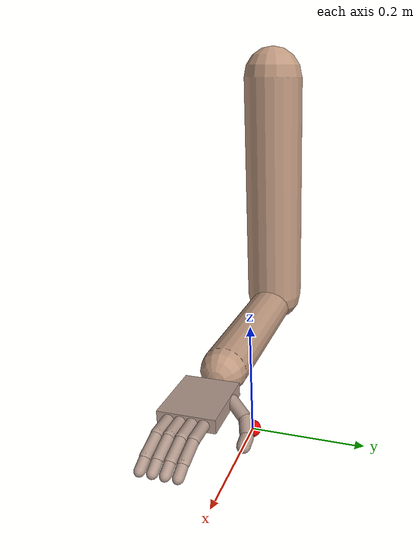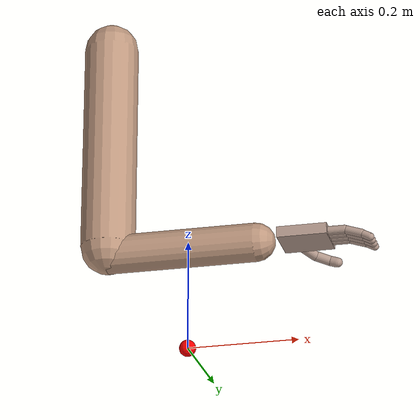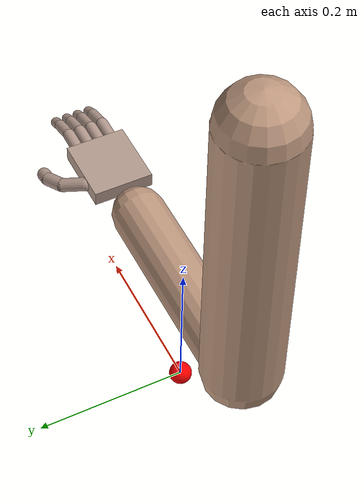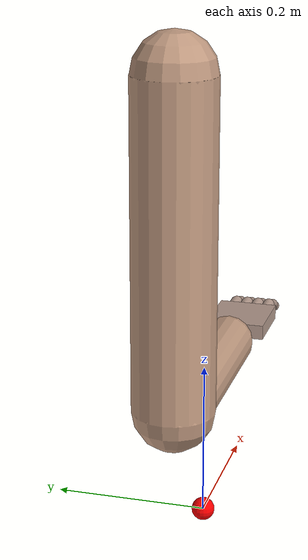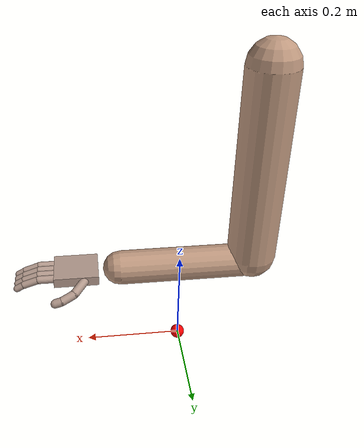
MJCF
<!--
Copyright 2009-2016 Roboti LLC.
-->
<mujoco model="arm_hand (v1.31)">
    <compiler inertiafromgeom="true" angle="radian"/>
    <size nuser_jnt="1" nuser_geom="1"/>
    <option timestep="0.01" gravity="0 0 -9.8" viscosity="0" iterations="20"/>

    <asset>
        <material name="MatGnd" specular=".3" shininess=".3" reflectance="0.3" rgba=".5 .55 .5 1"/>
    </asset>

    <default>
        <joint limited="true" damping="1" stiffness="0" armature=".1" user="0"/>
        <geom solref="0.008 1" solimp="0.95 0.95 0.01" margin="0.001" user="0"/>
        <motor ctrllimited="true" ctrlrange="-1 1"/>
        <position ctrllimited="true"/>

        <default class='0'>
            <geom friction="1 0.005 0.001" rgba=".75 .6 .5 1" contype="1" conaffinity="0"/>
        </default>

        <default class='1'>
            <geom friction="1 0.005 0.001" rgba=".7 .6 .55 1" contype="1" conaffinity="0"/>
        </default>

        <default class='arm'>
            <joint damping="5"/>
        </default>
    </default>

    <worldbody>
        <light directional="true" cutoff="40" exponent="10" diffuse=".4 .4 .4" specular=".7 .7 .7" pos="0 0 1.5" dir="0 0 -1"/>

        <!--  ================= ARM ================= /-->
        <body name="upperarm" pos="-0.15 0 0.6">
            <geom class="0" type="capsule" fromto="0 0 0 0 0 -0.395" size="0.05"/>
            <joint class='arm' name="s_abduction" type="hinge" pos="0 0 0" axis="1 0 0" range="-1.57 .7" user="001"/>
            <joint class='arm' name="s_flexion" type="hinge" pos="0 0 0" axis="0 -1 0" range="-.85 1.57" user="002"/>
            <joint class='arm' name="s_rotation" type="hinge" pos="0 0 0" axis="0 0 1" range="-.85 .85" user="003"/>

            <body name="forearm" pos="0 0 -0.41">
                <geom class="0" type="capsule" fromto="0 0 0 0.275 0 0" size="0.035"/>
                <joint class='arm' name="e_flexion" type="hinge" pos="0 0 0" axis="0 -1 0" range="-1.5 1.05" user="004"/>
                <joint class='arm' name="e_pronation" type="hinge" pos="0 0 0" axis="-1 0 0" range="-1.5 1.57" user="005"/>

        <!--  ================= Palm ================= /-->
                <body name="palm" pos="0.32 0 0">
                    <geom class="1" name="palm" type="box" size="0.045 0.04 0.01" pos="0.045 0 0"/>
                    <joint name="w_abduction" type="hinge" pos="0 0 0" axis="0 0 1" range="-.5 .5" user="006"/>
                    <joint name="w_flexion" type="hinge" pos="0 0 0" axis="0 -1 0" range="-1.05 1.05" user="007"/>

                    <body name="fingers" pos=".09 0 0">
                        <geom name="FFP" class="1" type="capsule" fromto=".00  .024 0         .03   .024 0"         size="0.008" />
                        <geom name="FFM" class="1" type="capsule" fromto=".03  .024 0         .06   .024 -.01"     size="0.0075" />
                        <geom name="FFD" class="1" type="capsule" fromto=".06  .024 -.01     .075  .024 -.018"     size="0.007" />

                        <geom name="MFP" class="1" type="capsule" fromto=".00 -.008 0         .03  -.008 0"         size="0.008"/>
                        <geom name="MFM" class="1" type="capsule" fromto=".03 -.008 0         .06  -.008 -.01"     size="0.0075" />
                        <geom name="MFD" class="1" type="capsule" fromto=".06 -.008 -.01     .075 -.008 -.018"     size="0.007" />

                        <geom name="RFP" class="1" type="capsule" fromto=".00  .008 0         .03   .008 0"         size="0.008" />
                        <geom name="RFM" class="1" type="capsule" fromto=".03  .008 0         .06   .008 -.01"     size="0.0075" />
                        <geom name="RFD" class="1" type="capsule" fromto=".06  .008 -.01     .075  .008 -.018"     size="0.007" />

                        <geom name="LFP" class="1" type="capsule" fromto=".00 -.024 0         .03  -.024 0"         size="0.008" />
                        <geom name="LFM" class="1" type="capsule" fromto=".03 -.024 0         .06  -.024 -.01"     size="0.0075" />
                        <geom name="LFD" class="1" type="capsule" fromto=".06 -.024 -.01     .075 -.024 -.018"     size="0.007" />
                    </body>

                    <body name="thumb" pos=".03 .04 0">
                        <geom name="THP" class="1" type="capsule" fromto="0 0 0             .02 .025 -.010"     size="0.009" />
                        <geom name="THM" class="1" type="capsule" fromto=".02 .025 -.010     .045 .035 -.018"     size="0.009" />
                        <geom name="THD" class="1" type="capsule" fromto=".045 .035 -.018     .058 .035 -.022"     size="0.009" />
                    </body>
                </body>
            </body>
        </body>

        <!--  ================= OBJECT ================= /-->

        <body name="target" pos="0 0 0" quat="0 0 0 0">
            <geom type="ellipsoid" size="0.015 0.015 0.015" contype="0" conaffinity="0" rgba="1.0 0.0 0.0 1.0" />
        </body>

        <body name="target-plane-body">
            <geom name="target-plane-geom" type="box" size="0.001 0.001 0.001" pos="0.0 0.0 0.0" contype="0" conaffinity="0" rgba="1.0 1.0 1.0 0.0" />
        </body>

    </worldbody>

    <actuator>
        <!--  ================= Torque actuators ================= /-->
        <motor joint='s_abduction'     name='As_abduction' gear="100"/>
        <motor joint='s_flexion'     name='As_flexion'     gear="100"/>
        <motor joint='s_rotation'     name='As_rotation'     gear="100"/>
        <motor joint='e_flexion'     name='Ae_flexion'     gear="70"/>
        <motor joint='e_pronation'     name='Ae_pronation' gear="70"/>
        <motor joint='w_abduction'     name='Aw_abduction' gear="30"/>
        <motor joint='w_flexion'     name='Aw_flexion'     gear="30"/>

        <!--  ================= Position actuators ================= /-->
    </actuator>
</mujoco>
